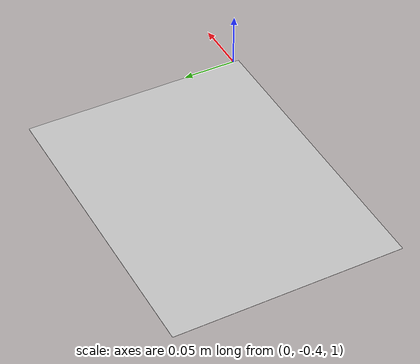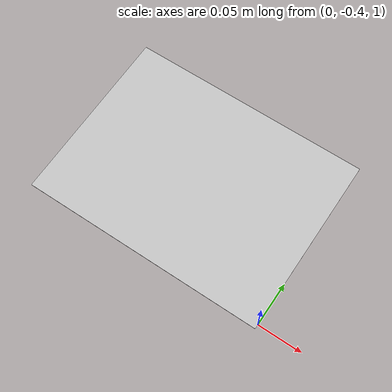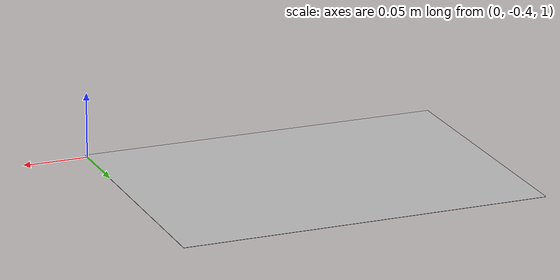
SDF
<?xml version="1.0"?>
<sdf version="1.9">
  <world name="draw_svg_world">

    <!-- Physics -->
    <plugin filename="ignition-gazebo-physics-system" name="ignition::gazebo::systems::Physics">
      <engine>
        <filename>ignition-physics-dartsim-plugin</filename>
      </engine>
      <dart>
        <collision_detector>bullet</collision_detector>
      </dart>
    </plugin>
    <physics name="physics_config" type="dart">
      <max_step_size>0.005</max_step_size>
      <real_time_factor>1.0</real_time_factor>
    </physics>

    <!-- Scene -->
    <plugin filename="ignition-gazebo-scene-broadcaster-system" name="ignition::gazebo::systems::SceneBroadcaster">
    </plugin>
    <scene>
      <ambient>0.8 0.8 0.8</ambient>
      <grid>false</grid>
    </scene>

    <!-- User Commands (transform control) -->
    <plugin filename="ignition-gazebo-user-commands-system" name="ignition::gazebo::systems::UserCommands">
    </plugin>

    <!-- Illumination -->
    <light type="directional" name="sun">
      <cast_shadows>true</cast_shadows>
      <pose>0 0 10 0 0 0</pose>
      <diffuse>0.8 0.8 0.8 1</diffuse>
      <specular>0.2 0.2 0.2 1</specular>
      <attenuation>
        <range>1000</range>
        <constant>0.9</constant>
        <linear>0.01</linear>
        <quadratic>0.001</quadratic>
      </attenuation>
      <direction>-0.3 0.3 -0.9</direction>
    </light>

    <!-- Models -->
    <!-- Ground -->
    <model name="ground_plane">
      <pose>0 0 0 0 0 0</pose>
      <static>true</static>
      <link name="ground_plane_link">
      <collision name="ground_plane_collision">
        <geometry>
          <plane>
            <normal>0 0 1</normal>
          </plane>
        </geometry>
      </collision>
      <visual name="ground_plane_visual">
        <geometry>
          <plane>
            <normal>0 0 1</normal>
            <size>4 4</size>
          </plane>
        </geometry>
        <material>
          <diffuse>0.2 0.2 0.2 1</diffuse>
          <specular>0.2 0.2 0.2 1</specular>
        </material>
      </visual>
         </link>
    </model>
    <model name="drawing_surface">
      <pose>-0.14 -0.3 1.0 0 0 0</pose>
      <static>true</static>
      <link name="drawing_surface_link">
        <collision name="drawing_surface_collision">
          <geometry>
            <plane>
              <normal>0 0 1</normal>
              <size>0.28 0.21</size>
            </plane>
          </geometry>
        </collision>
        <visual name="drawing_surface_visual">
          <geometry>
            <plane>
              <normal>0 0 1</normal>
              <size>0.28 0.21</size>
            </plane>
          </geometry>
          <material>
            <diffuse>0.8 0.8 0.8 1</diffuse>
            <specular>0.8 0.8 0.8 1</specular>
          </material>
        </visual>
      </link>
    </model>
    <!-- Static target -->
      <!-- Pose publisher plugin, used to determine the target pose to reach -->

  </world>
</sdf>
